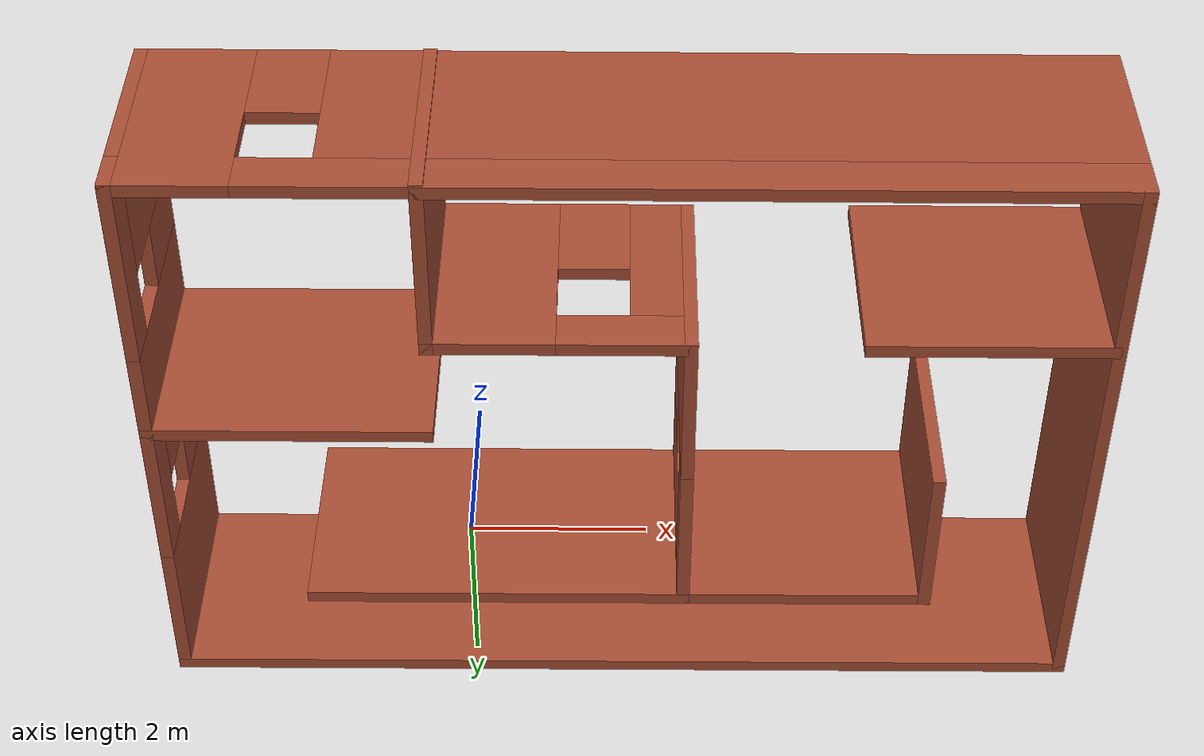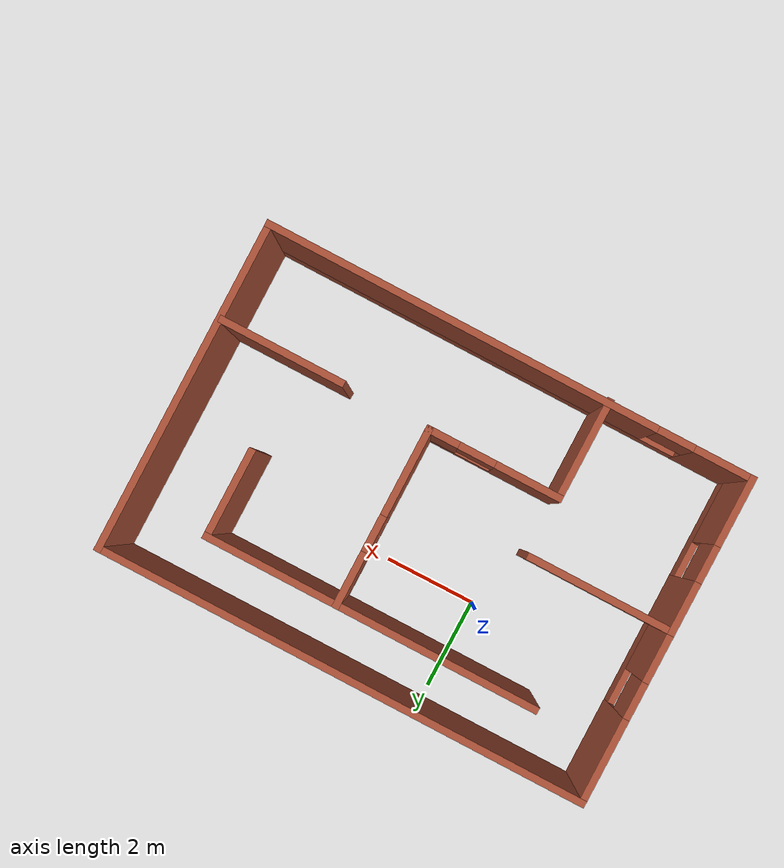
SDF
<?xml version='1.0'?>
<sdf version='1.7'>
  <model name='house1'>
    <pose>1.75 -1.23415 0 0 -0 0</pose>
    <link name='Wall_0'>
      <pose>-5.3 -1.86085 0 0 -0 -1.5708</pose>
      <visual name='Wall_0_Visual_0'>
        <pose>-1.17211 0 1.25 0 -0 0</pose>
        <geometry>
          <box>
            <size>1.15578 0.15 2.5</size>
          </box>
        </geometry>
        <material>
          <script>
            <uri>file://media/materials/scripts/gazebo.material</uri>
            <name>Gazebo/Bricks</name>
          </script>
          <ambient>1 1 1 1</ambient>
        </material>
        <meta>
          <layer>0</layer>
        </meta>
      </visual>
      <collision name='Wall_0_Collision_0'>
        <geometry>
          <box>
            <size>1.15578 0.15 2.5</size>
          </box>
        </geometry>
        <pose>-1.17211 0 1.25 0 -0 0</pose>
      </collision>
      <visual name='Wall_0_Visual_1'>
        <pose>0.577891 0 0.25 0 -0 0</pose>
        <geometry>
          <box>
            <size>2.34422 0.15 0.5</size>
          </box>
        </geometry>
        <material>
          <script>
            <uri>file://media/materials/scripts/gazebo.material</uri>
            <name>Gazebo/Bricks</name>
          </script>
          <ambient>1 1 1 1</ambient>
        </material>
        <meta>
          <layer>0</layer>
        </meta>
      </visual>
      <collision name='Wall_0_Collision_1'>
        <geometry>
          <box>
            <size>2.34422 0.15 0.5</size>
          </box>
        </geometry>
        <pose>0.577891 0 0.25 0 -0 0</pose>
      </collision>
      <visual name='Wall_0_Visual_2'>
        <pose>0.977891 0 1.5 0 -0 0</pose>
        <geometry>
          <box>
            <size>1.54422 0.15 2</size>
          </box>
        </geometry>
        <material>
          <script>
            <uri>file://media/materials/scripts/gazebo.material</uri>
            <name>Gazebo/Bricks</name>
          </script>
          <ambient>1 1 1 1</ambient>
        </material>
        <meta>
          <layer>0</layer>
        </meta>
      </visual>
      <collision name='Wall_0_Collision_2'>
        <geometry>
          <box>
            <size>1.54422 0.15 2</size>
          </box>
        </geometry>
        <pose>0.977891 0 1.5 0 -0 0</pose>
      </collision>
      <visual name='Wall_0_Visual_3'>
        <pose>-0.194218 0 1.9 0 -0 0</pose>
        <geometry>
          <box>
            <size>0.8 0.15 1.2</size>
          </box>
        </geometry>
        <material>
          <script>
            <uri>file://media/materials/scripts/gazebo.material</uri>
            <name>Gazebo/Bricks</name>
          </script>
          <ambient>1 1 1 1</ambient>
        </material>
        <meta>
          <layer>0</layer>
        </meta>
      </visual>
      <collision name='Wall_0_Collision_3'>
        <geometry>
          <box>
            <size>0.8 0.15 1.2</size>
          </box>
        </geometry>
        <pose>-0.194218 0 1.9 0 -0 0</pose>
      </collision>
    </link>
    <link name='Wall_1'>
      <pose>-0 -3.53585 0 0 -0 0</pose>
      <visual name='Wall_1_Visual_0'>
        <pose>-4.70452 0 1.25 0 -0 0</pose>
        <geometry>
          <box>
            <size>1.34096 0.15 2.5</size>
          </box>
        </geometry>
        <material>
          <script>
            <uri>file://media/materials/scripts/gazebo.material</uri>
            <name>Gazebo/Bricks</name>
          </script>
          <ambient>1 1 1 1</ambient>
        </material>
        <meta>
          <layer>0</layer>
        </meta>
      </visual>
      <collision name='Wall_1_Collision_0'>
        <geometry>
          <box>
            <size>1.34096 0.15 2.5</size>
          </box>
        </geometry>
        <pose>-4.70452 0 1.25 0 -0 0</pose>
      </collision>
      <visual name='Wall_1_Visual_1'>
        <pose>0.670478 0 0.25 0 -0 0</pose>
        <geometry>
          <box>
            <size>9.40904 0.15 0.5</size>
          </box>
        </geometry>
        <material>
          <script>
            <uri>file://media/materials/scripts/gazebo.material</uri>
            <name>Gazebo/Bricks</name>
          </script>
          <ambient>1 1 1 1</ambient>
        </material>
        <meta>
          <layer>0</layer>
        </meta>
      </visual>
      <collision name='Wall_1_Collision_1'>
        <geometry>
          <box>
            <size>9.40904 0.15 0.5</size>
          </box>
        </geometry>
        <pose>0.670478 0 0.25 0 -0 0</pose>
      </collision>
      <visual name='Wall_1_Visual_2'>
        <pose>1.07048 0 1.5 0 -0 0</pose>
        <geometry>
          <box>
            <size>8.60904 0.15 2</size>
          </box>
        </geometry>
        <material>
          <script>
            <uri>file://media/materials/scripts/gazebo.material</uri>
            <name>Gazebo/Bricks</name>
          </script>
          <ambient>1 1 1 1</ambient>
        </material>
        <meta>
          <layer>0</layer>
        </meta>
      </visual>
      <collision name='Wall_1_Collision_2'>
        <geometry>
          <box>
            <size>8.60904 0.15 2</size>
          </box>
        </geometry>
        <pose>1.07048 0 1.5 0 -0 0</pose>
      </collision>
      <visual name='Wall_1_Visual_3'>
        <pose>-3.63404 0 1.9 0 -0 0</pose>
        <geometry>
          <box>
            <size>0.8 0.15 1.2</size>
          </box>
        </geometry>
        <material>
          <script>
            <uri>file://media/materials/scripts/gazebo.material</uri>
            <name>Gazebo/Bricks</name>
          </script>
          <ambient>1 1 1 1</ambient>
        </material>
        <meta>
          <layer>0</layer>
        </meta>
      </visual>
      <collision name='Wall_1_Collision_3'>
        <geometry>
          <box>
            <size>0.8 0.15 1.2</size>
          </box>
        </geometry>
        <pose>-3.63404 0 1.9 0 -0 0</pose>
      </collision>
    </link>
    <link name='Wall_12'>
      <pose>-0.721669 -1.46415 0 0 -0 0</pose>
      <visual name='Wall_12_Visual_0'>
        <pose>-0.766931 0 1.25 0 -0 0</pose>
        <geometry>
          <box>
            <size>1.46614 0.15 2.5</size>
          </box>
        </geometry>
        <material>
          <script>
            <uri>file://media/materials/scripts/gazebo.material</uri>
            <name>Gazebo/Bricks</name>
          </script>
          <ambient>1 1 1 1</ambient>
        </material>
        <meta>
          <layer>0</layer>
        </meta>
      </visual>
      <collision name='Wall_12_Collision_0'>
        <geometry>
          <box>
            <size>1.46614 0.15 2.5</size>
          </box>
        </geometry>
        <pose>-0.766931 0 1.25 0 -0 0</pose>
      </collision>
      <visual name='Wall_12_Visual_1'>
        <pose>0.733069 0 0.25 0 -0 0</pose>
        <geometry>
          <box>
            <size>1.53386 0.15 0.5</size>
          </box>
        </geometry>
        <material>
          <script>
            <uri>file://media/materials/scripts/gazebo.material</uri>
            <name>Gazebo/Bricks</name>
          </script>
          <ambient>1 1 1 1</ambient>
        </material>
        <meta>
          <layer>0</layer>
        </meta>
      </visual>
      <collision name='Wall_12_Collision_1'>
        <geometry>
          <box>
            <size>1.53386 0.15 0.5</size>
          </box>
        </geometry>
        <pose>0.733069 0 0.25 0 -0 0</pose>
      </collision>
      <visual name='Wall_12_Visual_2'>
        <pose>1.13307 0 1.5 0 -0 0</pose>
        <geometry>
          <box>
            <size>0.733862 0.15 2</size>
          </box>
        </geometry>
        <material>
          <script>
            <uri>file://media/materials/scripts/gazebo.material</uri>
            <name>Gazebo/Bricks</name>
          </script>
          <ambient>1 1 1 1</ambient>
        </material>
        <meta>
          <layer>0</layer>
        </meta>
      </visual>
      <collision name='Wall_12_Collision_2'>
        <geometry>
          <box>
            <size>0.733862 0.15 2</size>
          </box>
        </geometry>
        <pose>1.13307 0 1.5 0 -0 0</pose>
      </collision>
      <visual name='Wall_12_Visual_3'>
        <pose>0.366138 0 1.9 0 -0 0</pose>
        <geometry>
          <box>
            <size>0.8 0.15 1.2</size>
          </box>
        </geometry>
        <material>
          <script>
            <uri>file://media/materials/scripts/gazebo.material</uri>
            <name>Gazebo/Bricks</name>
          </script>
          <ambient>1 1 1 1</ambient>
        </material>
        <meta>
          <layer>0</layer>
        </meta>
      </visual>
      <collision name='Wall_12_Collision_3'>
        <geometry>
          <box>
            <size>0.8 0.15 1.2</size>
          </box>
        </geometry>
        <pose>0.366138 0 1.9 0 -0 0</pose>
      </collision>
    </link>
    <link name='Wall_13'>
      <pose>0.703331 0.460848 0 0 -0 1.5708</pose>
      <visual name='Wall_13_Visual_0'>
        <pose>-1.0167 0 1.25 0 -0 0</pose>
        <geometry>
          <box>
            <size>1.9666 0.15 2.5</size>
          </box>
        </geometry>
        <material>
          <script>
            <uri>file://media/materials/scripts/gazebo.material</uri>
            <name>Gazebo/Bricks</name>
          </script>
          <ambient>1 1 1 1</ambient>
        </material>
        <meta>
          <layer>0</layer>
        </meta>
      </visual>
      <collision name='Wall_13_Collision_0'>
        <geometry>
          <box>
            <size>1.9666 0.15 2.5</size>
          </box>
        </geometry>
        <pose>-1.0167 0 1.25 0 -0 0</pose>
      </collision>
      <visual name='Wall_13_Visual_1'>
        <pose>0.983302 0 0.25 0 -0 0</pose>
        <geometry>
          <box>
            <size>2.0334 0.15 0.5</size>
          </box>
        </geometry>
        <material>
          <script>
            <uri>file://media/materials/scripts/gazebo.material</uri>
            <name>Gazebo/Bricks</name>
          </script>
          <ambient>1 1 1 1</ambient>
        </material>
        <meta>
          <layer>0</layer>
        </meta>
      </visual>
      <collision name='Wall_13_Collision_1'>
        <geometry>
          <box>
            <size>2.0334 0.15 0.5</size>
          </box>
        </geometry>
        <pose>0.983302 0 0.25 0 -0 0</pose>
      </collision>
      <visual name='Wall_13_Visual_2'>
        <pose>1.3833 0 1.5 0 -0 0</pose>
        <geometry>
          <box>
            <size>1.2334 0.15 2</size>
          </box>
        </geometry>
        <material>
          <script>
            <uri>file://media/materials/scripts/gazebo.material</uri>
            <name>Gazebo/Bricks</name>
          </script>
          <ambient>1 1 1 1</ambient>
        </material>
        <meta>
          <layer>0</layer>
        </meta>
      </visual>
      <collision name='Wall_13_Collision_2'>
        <geometry>
          <box>
            <size>1.2334 0.15 2</size>
          </box>
        </geometry>
        <pose>1.3833 0 1.5 0 -0 0</pose>
      </collision>
      <visual name='Wall_13_Visual_3'>
        <pose>0.366605 0 1.9 0 -0 0</pose>
        <geometry>
          <box>
            <size>0.8 0.15 1.2</size>
          </box>
        </geometry>
        <material>
          <script>
            <uri>file://media/materials/scripts/gazebo.material</uri>
            <name>Gazebo/Bricks</name>
          </script>
          <ambient>1 1 1 1</ambient>
        </material>
        <meta>
          <layer>0</layer>
        </meta>
      </visual>
      <collision name='Wall_13_Collision_3'>
        <geometry>
          <box>
            <size>0.8 0.15 1.2</size>
          </box>
        </geometry>
        <pose>0.366605 0 1.9 0 -0 0</pose>
      </collision>
    </link>
    <link name='Wall_15'>
      <collision name='Wall_15_Collision'>
        <geometry>
          <box>
            <size>2.75 0.15 2.5</size>
          </box>
        </geometry>
        <pose>0 0 1.25 0 -0 0</pose>
      </collision>
      <visual name='Wall_15_Visual'>
        <pose>0 0 1.25 0 -0 0</pose>
        <geometry>
          <box>
            <size>2.75 0.15 2.5</size>
          </box>
        </geometry>
        <material>
          <script>
            <uri>file://media/materials/scripts/gazebo.material</uri>
            <name>Gazebo/Bricks</name>
          </script>
          <ambient>1 1 1 1</ambient>
        </material>
        <meta>
          <layer>0</layer>
        </meta>
      </visual>
      <pose>3.93801 -1.47019 0 0 -0 3.14159</pose>
    </link>
    <link name='Wall_20'>
      <collision name='Wall_20_Collision'>
        <geometry>
          <box>
            <size>3 0.15 2.5</size>
          </box>
        </geometry>
        <pose>0 0 1.25 0 -0 0</pose>
      </collision>
      <visual name='Wall_20_Visual'>
        <pose>0 0 1.25 0 -0 0</pose>
        <geometry>
          <box>
            <size>3 0.15 2.5</size>
          </box>
        </geometry>
        <material>
          <script>
            <uri>file://media/materials/scripts/gazebo.material</uri>
            <name>Gazebo/Bricks</name>
          </script>
          <ambient>1 1 1 1</ambient>
        </material>
        <meta>
          <layer>0</layer>
        </meta>
      </visual>
      <pose>2.12833 2.38585 0 0 -0 0</pose>
    </link>
    <link name='Wall_21'>
      <collision name='Wall_21_Collision'>
        <geometry>
          <box>
            <size>2 0.15 2.5</size>
          </box>
        </geometry>
        <pose>0 0 1.25 0 -0 0</pose>
      </collision>
      <visual name='Wall_21_Visual'>
        <pose>0 0 1.25 0 -0 0</pose>
        <geometry>
          <box>
            <size>2 0.15 2.5</size>
          </box>
        </geometry>
        <material>
          <script>
            <uri>file://media/materials/scripts/gazebo.material</uri>
            <name>Gazebo/Bricks</name>
          </script>
          <ambient>1 1 1 1</ambient>
        </material>
        <meta>
          <layer>0</layer>
        </meta>
      </visual>
      <pose>3.55333 1.46085 0 0 -0 -1.5708</pose>
    </link>
    <link name='Wall_23'>
      <collision name='Wall_23_Collision'>
        <geometry>
          <box>
            <size>4.5 0.15 2.5</size>
          </box>
        </geometry>
        <pose>0 0 1.25 0 -0 0</pose>
      </collision>
      <visual name='Wall_23_Visual'>
        <pose>0 0 1.25 0 -0 0</pose>
        <geometry>
          <box>
            <size>4.5 0.15 2.5</size>
          </box>
        </geometry>
        <material>
          <script>
            <uri>file://media/materials/scripts/gazebo.material</uri>
            <name>Gazebo/Bricks</name>
          </script>
          <ambient>1 1 1 1</ambient>
        </material>
        <meta>
          <layer>0</layer>
        </meta>
      </visual>
      <pose>-1.47167 2.38585 0 0 -0 3.14159</pose>
    </link>
    <link name='Wall_3'>
      <collision name='Wall_3_Collision'>
        <geometry>
          <box>
            <size>7.25 0.15 2.5</size>
          </box>
        </geometry>
        <pose>0 0 1.25 0 -0 0</pose>
      </collision>
      <visual name='Wall_3_Visual'>
        <pose>0 0 1.25 0 -0 0</pose>
        <geometry>
          <box>
            <size>7.25 0.15 2.5</size>
          </box>
        </geometry>
        <material>
          <script>
            <uri>file://media/materials/scripts/gazebo.material</uri>
            <name>Gazebo/Bricks</name>
          </script>
          <ambient>1 1 1 1</ambient>
        </material>
        <meta>
          <layer>0</layer>
        </meta>
      </visual>
      <pose>5.3 0.014151 0 0 -0 1.5708</pose>
    </link>
    <link name='Wall_4'>
      <collision name='Wall_4_Collision'>
        <geometry>
          <box>
            <size>10.75 0.15 2.5</size>
          </box>
        </geometry>
        <pose>0 0 1.25 0 -0 0</pose>
      </collision>
      <visual name='Wall_4_Visual'>
        <pose>0 0 1.25 0 -0 0</pose>
        <geometry>
          <box>
            <size>10.75 0.15 2.5</size>
          </box>
        </geometry>
        <material>
          <script>
            <uri>file://media/materials/scripts/gazebo.material</uri>
            <name>Gazebo/Bricks</name>
          </script>
          <ambient>1 1 1 1</ambient>
        </material>
        <meta>
          <layer>0</layer>
        </meta>
      </visual>
      <pose>-0 3.56415 0 0 -0 3.14159</pose>
    </link>
    <link name='Wall_5'>
      <pose>-5.3 1.68915 0 0 -0 -1.5708</pose>
      <visual name='Wall_5_Visual_0'>
        <pose>-0.99557 0 1.25 0 -0 0</pose>
        <geometry>
          <box>
            <size>1.90886 0.15 2.5</size>
          </box>
        </geometry>
        <material>
          <script>
            <uri>file://media/materials/scripts/gazebo.material</uri>
            <name>Gazebo/Bricks</name>
          </script>
          <ambient>1 1 1 1</ambient>
        </material>
        <meta>
          <layer>0</layer>
        </meta>
      </visual>
      <collision name='Wall_5_Collision_0'>
        <geometry>
          <box>
            <size>1.90886 0.15 2.5</size>
          </box>
        </geometry>
        <pose>-0.99557 0 1.25 0 -0 0</pose>
      </collision>
      <visual name='Wall_5_Visual_1'>
        <pose>0.95443 0 0.25 0 -0 0</pose>
        <geometry>
          <box>
            <size>1.99114 0.15 0.5</size>
          </box>
        </geometry>
        <material>
          <script>
            <uri>file://media/materials/scripts/gazebo.material</uri>
            <name>Gazebo/Bricks</name>
          </script>
          <ambient>1 1 1 1</ambient>
        </material>
        <meta>
          <layer>0</layer>
        </meta>
      </visual>
      <collision name='Wall_5_Collision_1'>
        <geometry>
          <box>
            <size>1.99114 0.15 0.5</size>
          </box>
        </geometry>
        <pose>0.95443 0 0.25 0 -0 0</pose>
      </collision>
      <visual name='Wall_5_Visual_2'>
        <pose>1.35443 0 1.5 0 -0 0</pose>
        <geometry>
          <box>
            <size>1.19114 0.15 2</size>
          </box>
        </geometry>
        <material>
          <script>
            <uri>file://media/materials/scripts/gazebo.material</uri>
            <name>Gazebo/Bricks</name>
          </script>
          <ambient>1 1 1 1</ambient>
        </material>
        <meta>
          <layer>0</layer>
        </meta>
      </visual>
      <collision name='Wall_5_Collision_2'>
        <geometry>
          <box>
            <size>1.19114 0.15 2</size>
          </box>
        </geometry>
        <pose>1.35443 0 1.5 0 -0 0</pose>
      </collision>
      <visual name='Wall_5_Visual_3'>
        <pose>0.35886 0 1.9 0 -0 0</pose>
        <geometry>
          <box>
            <size>0.8 0.15 1.2</size>
          </box>
        </geometry>
        <material>
          <script>
            <uri>file://media/materials/scripts/gazebo.material</uri>
            <name>Gazebo/Bricks</name>
          </script>
          <ambient>1 1 1 1</ambient>
        </material>
        <meta>
          <layer>0</layer>
        </meta>
      </visual>
      <collision name='Wall_5_Collision_3'>
        <geometry>
          <box>
            <size>0.8 0.15 1.2</size>
          </box>
        </geometry>
        <pose>0.35886 0 1.9 0 -0 0</pose>
      </collision>
    </link>
    <link name='Wall_6'>
      <collision name='Wall_6_Collision'>
        <geometry>
          <box>
            <size>3.25 0.15 2.5</size>
          </box>
        </geometry>
        <pose>0 0 1.25 0 -0 0</pose>
      </collision>
      <visual name='Wall_6_Visual'>
        <pose>0 0 1.25 0 -0 0</pose>
        <geometry>
          <box>
            <size>3.25 0.15 2.5</size>
          </box>
        </geometry>
        <material>
          <script>
            <uri>file://media/materials/scripts/gazebo.material</uri>
            <name>Gazebo/Bricks</name>
          </script>
          <ambient>1 1 1 1</ambient>
        </material>
        <meta>
          <layer>0</layer>
        </meta>
      </visual>
      <pose>-3.75 -0.185848 0 0 -0 0</pose>
    </link>
    <link name='Wall_9'>
      <collision name='Wall_9_Collision'>
        <geometry>
          <box>
            <size>2.25 0.15 2.5</size>
          </box>
        </geometry>
        <pose>0 0 1.25 0 -0 0</pose>
      </collision>
      <visual name='Wall_9_Visual'>
        <pose>0 0 1.25 0 -0 0</pose>
        <geometry>
          <box>
            <size>2.25 0.15 2.5</size>
          </box>
        </geometry>
        <material>
          <script>
            <uri>file://media/materials/scripts/gazebo.material</uri>
            <name>Gazebo/Bricks</name>
          </script>
          <ambient>1 1 1 1</ambient>
        </material>
        <meta>
          <layer>0</layer>
        </meta>
      </visual>
      <pose>-2.14667 -2.51415 0 0 -0 1.5708</pose>
    </link>
    <static>1</static>
  </model>
</sdf>
